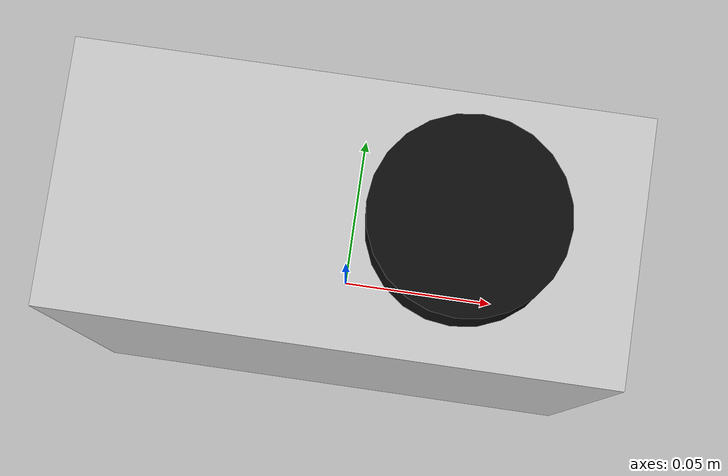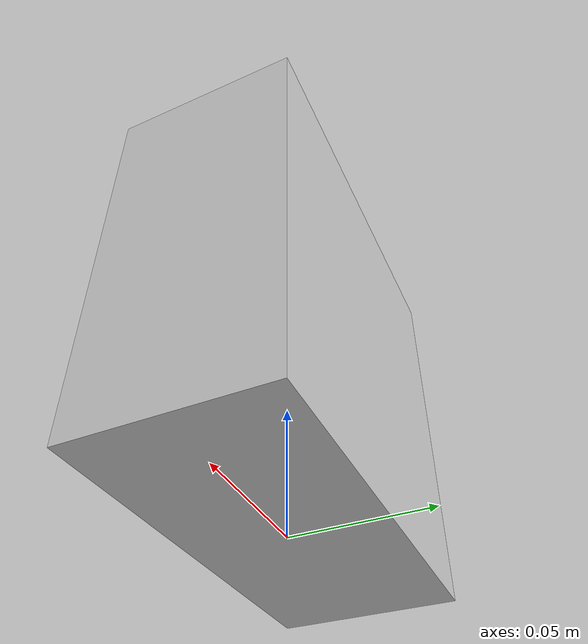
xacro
<?xml version="1.0"?>
<robot name="pinky_simple" xmlns:xacro="http://www.ros.org/wiki/xacro">

  <link name="base_footprint"/>

  <link name="base_link">
    <visual>
      <origin xyz="0 0 0.075" rpy="0 0 0"/>
      <geometry>
        <box size="0.15 0.07 0.15"/>
      </geometry>
      <material name="pinky_body">
        <color rgba="0.8 0.8 0.8 1.0"/>
      </material>
    </visual>

    <collision>
      <origin xyz="0 0 0.075" rpy="0 0 0"/>
      <geometry>
        <box size="0.15 0.07 0.15"/>
      </geometry>
    </collision>

    <inertial>
      <origin xyz="0 0 0.075" rpy="0 0 0"/>
      <mass value="1.0"/>
      <inertia ixx="0.01" ixy="0.0" ixz="0.0"
               iyy="0.01" iyz="0.0"
               izz="0.01"/>
    </inertial>
  </link>

  <joint name="base_footprint_to_base_link" type="fixed">
    <parent link="base_footprint"/>
    <child link="base_link"/>
    <origin xyz="0 0 0" rpy="0 0 0"/>
  </joint>

  <link name="rplidar_link">
    <visual>
      <origin xyz="0 0 0" rpy="0 0 0"/>
      <geometry>
        <cylinder radius="0.025" length="0.02"/>
      </geometry>
      <material name="lidar_black">
        <color rgba="0.05 0.05 0.05 1.0"/>
      </material>
    </visual>
  </link>

  <joint name="base_link_to_rplidar_link" type="fixed">
    <parent link="base_link"/>
    <child link="rplidar_link"/>
    <origin xyz="0.03 0 0.16" rpy="0 0 0"/>
  </joint>

</robot>
